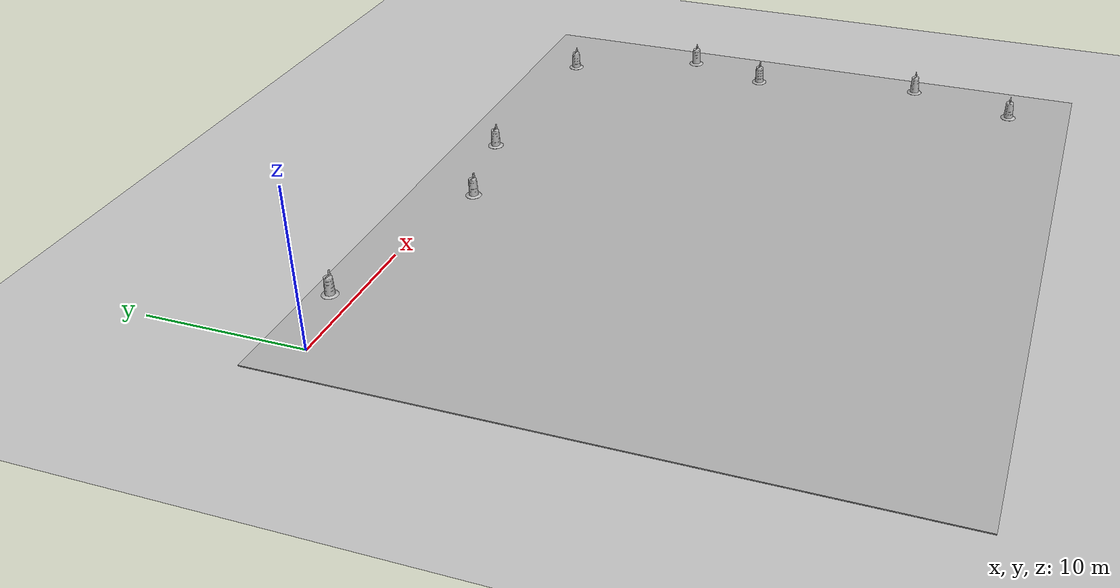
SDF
<sdf version="1.7">
 <world name="default">
  <light name="sun" type="directional">
   <pose>0 0 10 0 -0 0</pose>
   <diffuse>0.8 0.8 0.8 1</diffuse>
   <specular>0.2 0.2 0.2 1</specular>
   <attenuation>
    <range>1000</range>
    <constant>0.9</constant>
    <linear>0.01</linear>
    <quadratic>0.001</quadratic>
   </attenuation>
   <direction>-0.5 0.1 -0.9</direction>
   <spot><inner_angle>0</inner_angle><outer_angle>0</outer_angle><falloff>0</falloff></spot>
  </light>
  <model name="ground_plane">
   <static>1</static>
   <link name="link">
    <collision name="collision">
     <geometry><plane><normal>0 0 1</normal><size>100 100</size></plane></geometry>
     <surface>
      <contact><collide_bitmask>65535</collide_bitmask></contact>
      <friction><ode><mu>100</mu><mu2>50</mu2></ode></friction>
     </surface>
    </collision>
    <visual name="visual">
     <cast_shadows>0</cast_shadows>
     <geometry><plane><normal>0 0 1</normal><size>100 100</size></plane></geometry>
     <material>
      <script><uri>file://media/materials/scripts/gazebo.material</uri><name>Gazebo/Grey</name></script>
     </material>
    </visual>
   </link>
  </model>
  <gravity>0 0 -9.8</gravity>
  <magnetic_field>6e-06 2.3e-05 -4.2e-05</magnetic_field>
  <atmosphere type="adiabatic"/>
  <physics type="ode">
   <max_step_size>0.001</max_step_size>
   <real_time_factor>1</real_time_factor>
   <real_time_update_rate>1000</real_time_update_rate>
  </physics>
  <scene><ambient>0.4 0.4 0.4 1</ambient><background>0.7 0.7 0.7 1</background><shadows>1</shadows></scene>
  <spherical_coordinates>
   <surface_model>EARTH_WGS84</surface_model>
   <latitude_deg>0</latitude_deg>
   <longitude_deg>0</longitude_deg>
   <elevation>0</elevation>
   <heading_deg>0</heading_deg>
  </spherical_coordinates>
  <model name="igvc_track7">
   <static>1</static>
   <link name="link">
    <collision name="collision"><geometry><box><size>46.0958 39.0456 0.05</size></box></geometry></collision>
    <visual name="visual">
     <cast_shadows>0</cast_shadows>
     <geometry><box><size>46.0958 39.0456 0.05</size></box></geometry>
     <material>
      <script>
       <uri>model://igvc_track7/materials/scripts</uri>
       <uri>model://igvc_track7/materials/textures</uri>
       <name>vrc/ground</name>
      </script>
     </material>
    </visual>
   </link>
   <link name="link2">
    <collision name="collision"><geometry><box><size>46.0958 39.0456 0.05</size></box></geometry></collision>
    <visual name="visual">
     <cast_shadows>0</cast_shadows>
     <geometry><box><size>46.0958 39.0456 0.07</size></box></geometry>
     <material>
      <script>
       <uri>model://igvc_track7/materials/scripts</uri>
       <uri>model://igvc_track7/materials/textures</uri>
       <name>vrc/track</name>
      </script>
     </material>
    </visual>
   </link>
   <pose>20.7503 -16.8548 0 0 -0 0</pose>
  </model>
  <model name="Construction Barrel">
   <link name="link">
    <inertial>
     <pose>0 0 0.4 0 -0 0</pose>
     <mass>500</mass>
     <inertia><ixx>51.2096</ixx><iyy>51.2096</iyy><izz>25</izz><ixy>0</ixy><ixz>0</ixz><iyz>0</iyz></inertia>
    </inertial>
    <collision name="collision">
     <geometry><mesh><uri>model://construction_barrel/meshes/construction_barrel.dae</uri></mesh></geometry>
    </collision>
    <visual name="visual">
     <geometry><mesh><uri>model://construction_barrel/meshes/construction_barrel.dae</uri></mesh></geometry>
    </visual>
   </link>
   <pose>17.9478 -1.36115 0.024999 2e-06 -0 3e-06</pose>
  </model>
  <model name="Construction Barrel_0">
   <link name="link">
    <inertial>
     <pose>0 0 0.4 0 -0 0</pose>
     <mass>500</mass>
     <inertia><ixx>51.2096</ixx><iyy>51.2096</iyy><izz>25</izz><ixy>0</ixy><ixz>0</ixz><iyz>0</iyz></inertia>
    </inertial>
    <collision name="collision">
     <geometry><mesh><uri>model://construction_barrel/meshes/construction_barrel.dae</uri></mesh></geometry>
    </collision>
    <visual name="visual">
     <geometry><mesh><uri>model://construction_barrel/meshes/construction_barrel.dae</uri></mesh></geometry>
    </visual>
   </link>
   <pose>5.07488 1.48672 0.025 -1e-06 -1e-06 -3.1e-05</pose>
  </model>
  <model name="Construction Barrel_1">
   <link name="link">
    <inertial>
     <pose>0 0 0.4 0 -0 0</pose>
     <mass>500</mass>
     <inertia><ixx>51.2096</ixx><iyy>51.2096</iyy><izz>25</izz><ixy>0</ixy><ixz>0</ixz><iyz>0</iyz></inertia>
    </inertial>
    <collision name="collision">
     <geometry><mesh><uri>model://construction_barrel/meshes/construction_barrel.dae</uri></mesh></geometry>
    </collision>
    <visual name="visual">
     <geometry><mesh><uri>model://construction_barrel/meshes/construction_barrel.dae</uri></mesh></geometry>
    </visual>
   </link>
   <pose>38.2594 -0.383426 0.024999 3e-06 -0 -3.4e-05</pose>
  </model>
  <model name="Construction Barrel_2">
   <link name="link">
    <inertial>
     <pose>0 0 0.4 0 -0 0</pose>
     <mass>500</mass>
     <inertia><ixx>51.2096</ixx><iyy>51.2096</iyy><izz>25</izz><ixy>0</ixy><ixz>0</ixz><iyz>0</iyz></inertia>
    </inertial>
    <collision name="collision">
     <geometry><mesh><uri>model://construction_barrel/meshes/construction_barrel.dae</uri></mesh></geometry>
    </collision>
    <visual name="visual">
     <geometry><mesh><uri>model://construction_barrel/meshes/construction_barrel.dae</uri></mesh></geometry>
    </visual>
   </link>
   <pose>24.6152 0.112076 0.025 1e-06 -0 -3.5e-05</pose>
  </model>
  <model name="Construction Barrel_3">
   <link name="link">
    <inertial>
     <pose>0 0 0.4 0 -0 0</pose>
     <mass>500</mass>
     <inertia><ixx>51.2096</ixx><iyy>51.2096</iyy><izz>25</izz><ixy>0</ixy><ixz>0</ixz><iyz>0</iyz></inertia>
    </inertial>
    <collision name="collision">
     <geometry><mesh><uri>model://construction_barrel/meshes/construction_barrel.dae</uri></mesh></geometry>
    </collision>
    <visual name="visual">
     <geometry><mesh><uri>model://construction_barrel/meshes/construction_barrel.dae</uri></mesh></geometry>
    </visual>
   </link>
   <pose>40.0994 -14.1639 0.024999 -1e-06 -2e-06 -3.6e-05</pose>
  </model>
  <model name="Construction Barrel_4">
   <link name="link">
    <inertial>
     <pose>0 0 0.4 0 -0 0</pose>
     <mass>500</mass>
     <inertia><ixx>51.2096</ixx><iyy>51.2096</iyy><izz>25</izz><ixy>0</ixy><ixz>0</ixz><iyz>0</iyz></inertia>
    </inertial>
    <collision name="collision">
     <geometry><mesh><uri>model://construction_barrel/meshes/construction_barrel.dae</uri></mesh></geometry>
    </collision>
    <visual name="visual">
     <geometry><mesh><uri>model://construction_barrel/meshes/construction_barrel.dae</uri></mesh></geometry>
    </visual>
   </link>
   <pose>41.99 -25.3353 0.024999 4e-06 -0 -3.8e-05</pose>
  </model>
  <model name="Construction Barrel_5">
   <link name="link">
    <inertial>
     <pose>0 0 0.4 0 -0 0</pose>
     <mass>500</mass>
     <inertia><ixx>51.2096</ixx><iyy>51.2096</iyy><izz>25</izz><ixy>0</ixy><ixz>0</ixz><iyz>0</iyz></inertia>
    </inertial>
    <collision name="collision">
     <geometry><mesh><uri>model://construction_barrel/meshes/construction_barrel.dae</uri></mesh></geometry>
    </collision>
    <visual name="visual">
     <geometry><mesh><uri>model://construction_barrel/meshes/construction_barrel.dae</uri></mesh></geometry>
    </visual>
   </link>
   <pose>39.9398 -32.2749 0.024999 -1e-06 -2e-06 -4e-05</pose>
  </model>
  <model name="Construction Barrel_6">
   <link name="link">
    <inertial>
     <pose>0 0 0.4 0 -0 0</pose>
     <mass>500</mass>
     <inertia><ixx>51.2096</ixx><iyy>51.2096</iyy><izz>25</izz><ixy>0</ixy><ixz>0</ixz><iyz>0</iyz></inertia>
    </inertial>
    <collision name="collision">
     <geometry><mesh><uri>model://construction_barrel/meshes/construction_barrel.dae</uri></mesh></geometry>
    </collision>
    <visual name="visual">
     <geometry><mesh><uri>model://construction_barrel/meshes/construction_barrel.dae</uri></mesh></geometry>
    </visual>
   </link>
   <pose>41.7745 -8.78779 0.024999 -1e-06 -4e-06 -4.2e-05</pose>
  </model>
 </world>
</sdf>
